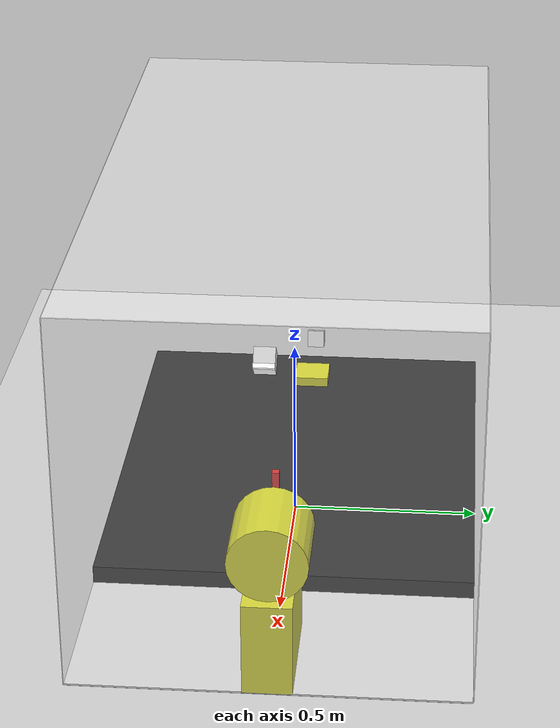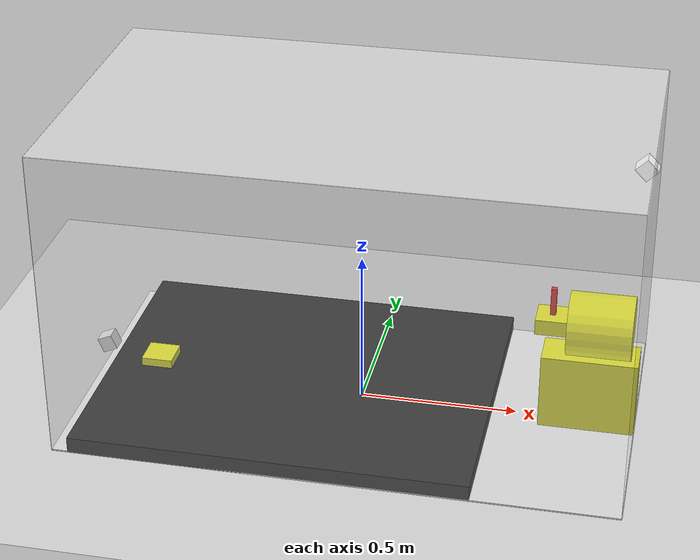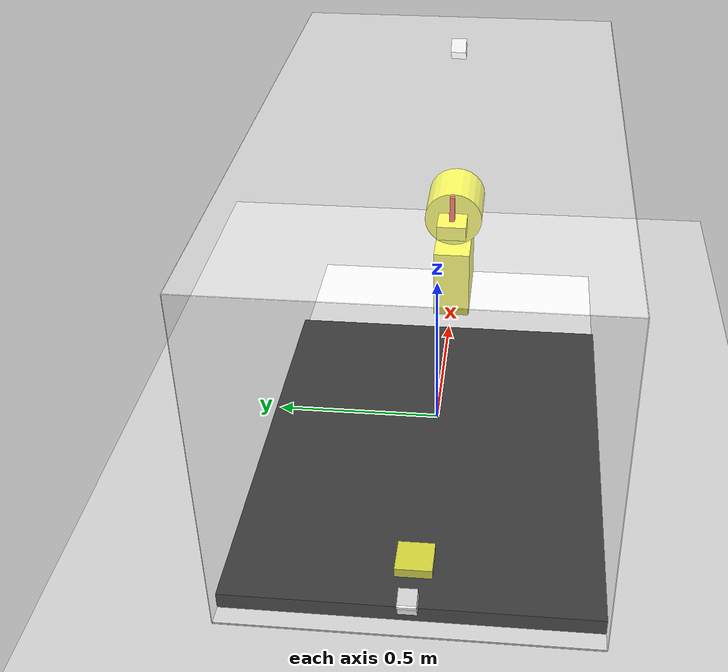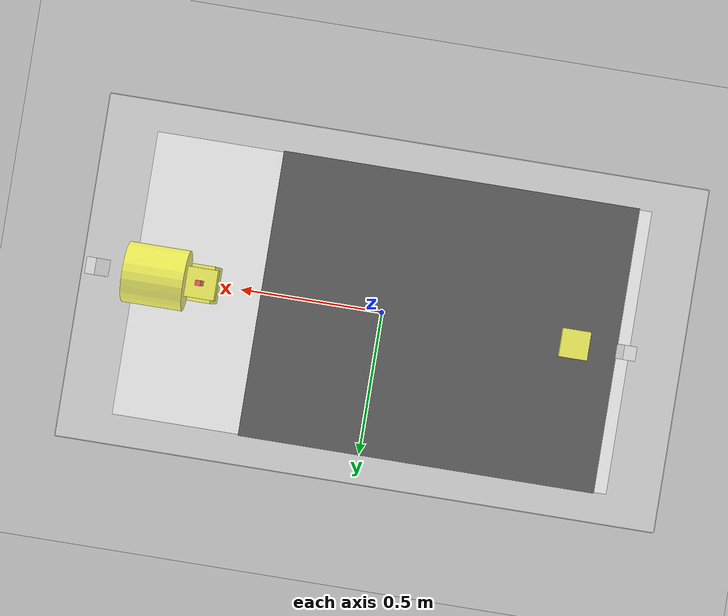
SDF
<?xml version="1.0" ?>

<sdf version="1.8">
  <world name="demo">
    <plugin
      filename="gz-sim-physics-system"
      name="gz::sim::systems::Physics">
    </plugin>
    <plugin
      filename="gz-sim-sensors-system"
      name="gz::sim::systems::Sensors">
      <render_engine>ogre2</render_engine>
    </plugin>
    <plugin
      filename="gz-sim-scene-broadcaster-system"
      name="gz::sim::systems::SceneBroadcaster">
    </plugin>
    <plugin
      filename="gz-sim-user-commands-system"
      name="gz::sim::systems::UserCommands">
    </plugin>
    <plugin
      filename="BasicSystem"
      name="ros_gz_example_gazebo::BasicSystem">
    </plugin>
    <plugin
      filename="FullSystem"
      name="ros_gz_example_gazebo::FullSystem">
    </plugin>

    <light name="sun" type="directional">
      <cast_shadows>true</cast_shadows>
      <pose>0 0 10 0 0 0</pose>
      <diffuse>0.8 0.8 0.8 1</diffuse>
      <specular>0.2 0.2 0.2 1</specular>
      <attenuation>
        <range>1000</range>
        <constant>0.9</constant>
        <linear>0.01</linear>
        <quadratic>0.001</quadratic>
      </attenuation>
      <direction>-0.5 0.1 -0.9</direction>
    </light>

    <model name="ground_plane">
      <static>true</static>
      <link name="link">
        <collision name="collision">
          <geometry>
            <plane>
              <normal>0 0 1</normal>
              <size>10 10</size>
            </plane>
          </geometry>
        </collision>
        <visual name="visual">
          <geometry>
            <plane>
              <normal>0 0 1</normal>
              <size>10 10</size>
            </plane>
          </geometry>
          <material>
            <ambient>0.8 0.8 0.8 1</ambient>
            <diffuse>0.8 0.8 0.8 1</diffuse>
            <specular>0.8 0.8 0.8 1</specular>
          </material>
        </visual>
      </link>
    </model>

    <!-- Model Cellule --><!-- Model Cellule --><!-- Model Cellule --><!-- Model Cellule --><!-- Model Cellule --><!-- Model Cellule --><!-- Model Cellule -->

    <model name='Cellule' canonical_link='Bas'>
        <static>true</static>
        <pose>0 0 0 0 0 0</pose>
        <link name='Bas'>
            <pose relative_to='__model__'>0 0 0 0 0 0</pose>
            <inertial>
                <mass>12</mass>
                <inertia>
                    <ixx>1</ixx>
                    <ixy>0</ixy>
                    <ixz>0</ixz>
                    <iyy>4</iyy>
                    <iyz>0</iyz>
                    <izz>5</izz>
                </inertia>
            </inertial>
            <visual name='visual'>
                <geometry>
                    <box>
                        <size>1.75 1.0 0.005</size>
                    </box>
                </geometry>
                <material>
                    <ambient>1.0 1.0 1.0 1.0</ambient>
                    <diffuse>1.0 1.0 1.0 1.0</diffuse>
                    <specular>1.0 1.0 1.0 1.0</specular>
                </material>
            </visual>
            <collision name='collision'>
                <geometry>
                    <box>
                        <size>1.75 1.0 0.005</size>
                    </box>
                </geometry>
            </collision>
        </link>

        <link name='Dessus'>
            <pose relative_to='fixed_bas_dessus'>0 0 0 0 0 0</pose>
            <inertial>
                <mass>12</mass>
                <inertia>
                    <ixx>1</ixx>
                    <ixy>0</ixy>
                    <ixz>0</ixz>
                    <iyy>4</iyy>
                    <iyz>0</iyz>
                    <izz>5</izz>
                </inertia>
            </inertial>
            <visual name='visual'>
                <geometry>
                    <box>
                        <size>1.75 1.0 0.005</size>
                    </box>
                </geometry>
                <material>
                    <ambient>1.0 1.0 1.0 0.4</ambient>
                    <diffuse>1.0 1.0 1.0 0.4</diffuse>
                    <specular>1.0 1.0 1.0 0.4</specular>
                </material>
            </visual>
            <collision name='collision'>
                <geometry>
                    <box>
                        <size>1.75 1.0 0.005</size>
                    </box>
                </geometry>
            </collision>
        </link>

        <link name='Fond'>
            <pose relative_to="fixed_bas_fond">0 0 0 0 0 0</pose>
            <inertial>
                <mass>12</mass>
                <inertia>
                    <ixx>1</ixx>
                    <ixy>0</ixy>
                    <ixz>0</ixz>
                    <iyy>4</iyy>
                    <iyz>0</iyz>
                    <izz>5</izz>
                </inertia>
            </inertial>
            <visual name='visual'>
                <geometry>
                    <box>
                        <size>1.75 1.0 0.005</size>
                    </box>
                </geometry>
                <material>
                    <ambient>1.0 1.0 1.0 0.4</ambient>
                    <diffuse>1.0 1.0 1.0 0.4</diffuse>
                    <specular>1.0 1.0 1.0 0.4</specular>
                </material>
            </visual>
            <collision name='collision'>
                <geometry>
                    <box>
                        <size>1.75 1.0 0.005</size>
                    </box>
                </geometry>
            </collision>
        </link>

        <link name='Devant'>
            <pose relative_to="fixed_bas_devant">0 0 0 0 0 0</pose>
            <inertial>
                <mass>12</mass>
                <inertia>
                    <ixx>1</ixx>
                    <ixy>0</ixy>
                    <ixz>0</ixz>
                    <iyy>4</iyy>
                    <iyz>0</iyz>
                    <izz>5</izz>
                </inertia>
            </inertial>
            <visual name='visual'>
                <geometry>
                    <box>
                        <size>1.75 1.0 0.005</size>
                    </box>
                </geometry>
                <material>
                    <ambient>1.0 1.0 1.0 0.4</ambient>
                    <diffuse>1.0 1.0 1.0 0.4</diffuse>
                    <specular>1.0 1.0 1.0 0.4</specular>
                </material>
            </visual>
            <collision name='collision'>
                <geometry>
                    <box>
                        <size>1.75 1.0 0.005</size>
                    </box>
                </geometry>
            </collision>
        </link>

        <link name='Droite'>
            <pose relative_to="fixed_bas_droite">0 0 0 0 0 0</pose>
            <inertial>
                <mass>6</mass>
                <inertia>
                    <ixx>0.5</ixx>
                    <ixy>0</ixy>
                    <ixz>0</ixz>
                    <iyy>0.5</iyy>
                    <iyz>0</iyz>
                    <izz>1</izz>
                </inertia>
            </inertial>
            <visual name='visual'>
                <geometry>
                    <box>
                        <size>1.0 1.0 0.005</size>
                    </box>
                </geometry>
                <material>
                    <ambient>1.0 1.0 1.0 0.4</ambient>
                    <diffuse>1.0 1.0 1.0 0.4</diffuse>
                    <specular>1.0 1.0 1.0 0.4</specular>
                </material>
            </visual>
            <collision name='collision'>
                <geometry>
                    <box>
                        <size>1.0 1.0 0.005</size>
                    </box>
                </geometry>
            </collision>
        </link>

        <link name='Gauche'>
            <pose relative_to="fixed_bas_gauche">0 0 0 0 0 0</pose>
            <inertial>
                <mass>6</mass>
                <inertia>
                    <ixx>0.5</ixx>
                    <ixy>0</ixy>
                    <ixz>0</ixz>
                    <iyy>0.5</iyy>
                    <iyz>0</iyz>
                    <izz>1</izz>
                </inertia>
            </inertial>
            <visual name='visual'>
                <geometry>
                    <box>
                        <size>1.0 1.0 0.005</size>
                    </box>
                </geometry>
                <material>
                    <ambient>1.0 1.0 1.0 0.4</ambient>
                    <diffuse>1.0 1.0 1.0 0.4</diffuse>
                    <specular>1.0 1.0 1.0 0.4</specular>
                </material>
            </visual>
            <collision name='collision'>
                <geometry>
                    <box>
                        <size>1.0 1.0 0.005</size>
                    </box>
                </geometry>
            </collision>
        </link>

        <!--    Caméra    --><!--    Caméra    --><!--    Caméra    --><!--    Caméra    --><!--    Caméra    -->
        <link name='Camera_gauche'>
            <pose relative_to='__model__'>0.85 0 0.9 0 0.775 3.14</pose>
            <inertial>
                <mass>5</mass>
                <inertia>
                    <ixx>1</ixx>
                    <ixy>0</ixy>
                    <ixz>0</ixz>
                    <iyy>4</iyy>
                    <iyz>0</iyz>
                    <izz>5</izz>
                </inertia>
            </inertial>
            <visual name='visual'>
                <geometry>
                    <box>
                        <size>0.05 0.05 0.05</size>
                    </box>
                </geometry>
                <material>
                    <ambient>1.0 1.0 1.0 1.0</ambient>
                    <diffuse>1.0 1.0 1.0 1.0</diffuse>
                    <specular>1.0 1.0 1.0 1.0</specular>
                </material>
            </visual>
            <collision name='collision'>
                <geometry>
                    <box>
                        <size>0.05 0.05 0.05</size>
                    </box>
                </geometry>
            </collision>
            <sensor name="camera_sensor" type="camera">
                <camera>
                    <horizontal_fov>1.5</horizontal_fov>
                    <image>
                    <width>640</width>
                    <height>480</height>
                    <format>R8G8B8</format>
                    </image>
                    <clip>
                    <near>0.1</near>
                    <far>100</far>
                    </clip>
                </camera>
                <always_on>true</always_on>
                <update_rate>30</update_rate>
                <visualize>true</visualize>
            </sensor>
        </link>

        <link name='Camera_droite'>
            <pose relative_to='__model__'>-0.85 0 0.1 0. -0.4 0.0</pose>
            <inertial>
                <mass>5</mass>
                <inertia>
                    <ixx>1</ixx>
                    <ixy>0</ixy>
                    <ixz>0</ixz>
                    <iyy>4</iyy>
                    <iyz>0</iyz>
                    <izz>5</izz>
                </inertia>
            </inertial>
            <visual name='visual'>
                <geometry>
                    <box>
                        <size>0.05 0.05 0.05</size>
                    </box>
                </geometry>
                <material>
                    <ambient>1.0 1.0 1.0 1.0</ambient>
                    <diffuse>1.0 1.0 1.0 1.0</diffuse>
                    <specular>1.0 1.0 1.0 1.0</specular>
                </material>
            </visual>
            <collision name='collision'>
                <geometry>
                    <box>
                        <size>0.05 0.05 0.05</size>
                    </box>
                </geometry>
            </collision>
            <sensor name="camera_sensor" type="camera">
                <camera>
                    <horizontal_fov>1.5</horizontal_fov>
                    <image>
                    <width>640</width>
                    <height>480</height>
                    <format>R8G8B8</format>
                    </image>
                    <clip>
                    <near>0.1</near>
                    <far>100</far>
                    </clip>
                </camera>
                <always_on>true</always_on>
                <update_rate>30</update_rate>
                <visualize>true</visualize>
            </sensor>
        </link>

        <!-- Joint Cellule --><!-- Joint Cellule --><!-- Joint Cellule --><!-- Joint Cellule --><!-- Joint Cellule --><!-- Joint Cellule --><!-- Joint Cellule -->

        <joint name="fixed_bas_fond" type="fixed">
            <pose relative_to="Bas">0 -0.5 0.5 -1.5707 0 0</pose>
            <parent>Bas</parent>
            <child>Fond</child>
        </joint>

        <joint name="fixed_bas_dessus" type="fixed">
            <pose relative_to="Bas">0 0 1 0 0 0</pose>
            <parent>Bas</parent>
            <child>Dessus</child>
        </joint>

        <joint name="fixed_bas_devant" type="fixed">
            <pose relative_to="Bas">0 0.5 0.5 -1.5707 0 0</pose>
            <parent>Bas</parent>
            <child>Devant</child>
        </joint>

        <joint name="fixed_bas_gauche" type="fixed">
            <pose relative_to="Bas">0.875 0 0.5 0 1.5707 0</pose>
            <parent>Bas</parent>
            <child>Gauche</child>
        </joint>

        <joint name="fixed_bas_droite" type="fixed">
            <pose relative_to="Bas">-0.875 0 0.5 0 1.5707 0</pose>
            <parent>Bas</parent>
            <child>Droite</child>
        </joint>

    </model>

    <!--  Model Boite  --><!--  Model Boite  --><!--  Model Boite  --><!--  Model Boite  --><!--  Model Boite  --><!--  Model Boite  --><!--  Model Boite  -->

    <model name='Boite' canonical_link='Boite_Gauche'>
        <static>true</static>
        <pose>0 0 0 0 0 0</pose>
        <link name='Boite_Gauche'>
            <pose relative_to='__model__'>0.725 0 0.125 0 0 0</pose>
            <inertial>
                <mass>12</mass>
                <inertia>
                    <ixx>1</ixx>
                    <ixy>0</ixy>
                    <ixz>0</ixz>
                    <iyy>4</iyy>
                    <iyz>0</iyz>
                    <izz>5</izz>
                </inertia>
            </inertial>
            <visual name='visual'>
                <geometry>
                    <box>
                        <size>0.3 0.125 0.25</size>
                    </box>
                </geometry>
                <material>
                    <ambient>1.0 1.0 0 1.0</ambient>
                    <diffuse>1.0 1.0 0 1.0</diffuse>
                    <specular>1.0 1.0 0 1.0</specular>
                </material>
            </visual>
            <collision name='collision'>
                <geometry>
                    <box>
                        <size>0.3 0.125 0.25</size>
                    </box>
                </geometry>
            </collision>
        </link>

        <link name='Boite_Droite'>
            <pose relative_to='__model__'>-0.675 0 0.0525 0 0 0</pose>
            <inertial>
                <mass>12</mass>
                <inertia>
                    <ixx>1</ixx>
                    <ixy>0</ixy>
                    <ixz>0</ixz>
                    <iyy>4</iyy>
                    <iyz>0</iyz>
                    <izz>5</izz>
                </inertia>
            </inertial>
            <visual name='visual'>
                <geometry>
                    <box>
                        <size>0.1 0.1 0.05</size>
                    </box>
                </geometry>
                <material>
                    <ambient>1.0 1.0 0 1.0</ambient>
                    <diffuse>1.0 1.0 0 1.0</diffuse>
                    <specular>1.0 1.0 0 1.0</specular>
                </material>
            </visual>
            <collision name='collision'>
                <geometry>
                    <box>
                        <size>0.1 0.1 0.05</size>
                    </box>
                </geometry>
            </collision>
        </link>
    </model>

    <!--  Model Fiole  --><!--  Model Fiole  --><!--  Model Fiole  --><!--  Model Fiole  --><!--  Model Fiole  --><!--  Model Fiole  --><!--  Model Fiole  -->

    <model name='Fiole' canonical_link='Fiole_world'>
        <static>false</static>
        <pose>0.6 0 0.42 0 0 0</pose>
        <link name='Fiole_world'>
            <pose>0.0 0 0.0 0 0 0</pose>
            <inertial>
                <mass>0.2</mass>
                <inertia>
                    <ixx>0.0001877</ixx>
                    <ixy>0</ixy>
                    <ixz>0</ixz>
                    <iyy>0.0001877</iyy>
                    <iyz>0</iyz>
                    <izz>0.000010935</izz>
                </inertia>
            </inertial>
            <visual name='visual'>
                <geometry>
                    <box>
                        <size>0.0175 0.0175 0.09</size>
                    </box>
                </geometry>
                <material>
                    <ambient>1.0 0.0 0 1.0</ambient>
                    <diffuse>1.0 0.0 0 1.0</diffuse>
                    <specular>1.0 0.0 0 1.0</specular>
                </material>
            </visual>
            <collision name='collision'>
                <geometry>
                    <box>
                        <size>0.0175 0.0175 0.09</size>
                    </box>
                </geometry>
                <surface>
                	<friction>
                		<ode>
                			<mu>0.15</mu>
                			<mu2>0.15</mu2>
                		</ode>
                	</friction>
                </surface>
            </collision>
        </link>
        <plugin
        filename="gz-sim-pose-publisher-system"
        name="gz::sim::systems::PosePublisher">
        <publish_link_pose>true</publish_link_pose>
        <publish_sensor_pose>true</publish_sensor_pose>
        <publish_collision_pose>true</publish_collision_pose>
        <publish_visual_pose>true</publish_visual_pose>
        <use_pose_vector_msg>true</use_pose_vector_msg>
        <publish_model_pose>true</publish_model_pose>
        <publish_nested_model_pose>true</publish_nested_model_pose>
        </plugin>
    </model>

    <!--  Model Fond   --><!--  Model Fond   --><!--  Model Fond   --><!--  Model Fond   --><!--  Model Fond   --><!--  Model Fond   --><!--  Model Fond   -->

    <model name='fond_haut' canonical_link='fond_world'>
        <static>true</static>
        <pose>0 0 0 0 0 0</pose>
        <link name='fond_world'>
            <pose relative_to='__model__'>-0.2 0 0.025 0 0 0</pose>
            <inertial>
                <mass>40</mass>
                <inertia>
                    <ixx>4</ixx>
                    <ixy>0</ixy>
                    <ixz>0</ixz>
                    <iyy>4</iyy>
                    <iyz>0</iyz>
                    <izz>5</izz>
                </inertia>
            </inertial>
            <visual name='visual'>
                <geometry>
                    <box>
                        <size>1.25 1.0 0.05</size>
                    </box>
                </geometry>
                <material>
                    <ambient>0.0 0.0 0.0 1.0</ambient>
                    <diffuse>0.0 0.0 0.0 1.0</diffuse>
                    <specular>0.0 0.0 0.0 1.0</specular>
                </material>
            </visual>
            <collision name='collision'>
                <geometry>
                    <box>
                        <size>1.1 1.0 0.1</size>
                    </box>
                </geometry>
            </collision>
        </link>
    </model>

    <!-- Model RTP_BOX --><!-- Model RTP_BOX --><!-- Model RTP_BOX --><!-- Model RTP_BOX --><!-- Model RTP_BOX --><!-- Model RTP_BOX --><!-- Model RTP_BOX -->

    <model name='RTP_Box' canonical_link='RTP_world'>
        <static>true</static>
        <pose>0 0 0 0 0 0</pose>
        <link name='RTP_world'>
            <pose relative_to='__model__'>0.75 0 0.35 0 1.57 0</pose>
            <inertial>
                <mass>12</mass>
                <inertia>
                    <ixx>1</ixx>
                    <ixy>0</ixy>
                    <ixz>0</ixz>
                    <iyy>4</iyy>
                    <iyz>0</iyz>
                    <izz>5</izz>
                </inertia>
            </inertial>
            <visual name='visual'>
                <geometry>
                    <cylinder>
                        <radius>0.1</radius>
                        <length>0.2</length>
                    </cylinder>
                </geometry>
                <material>
                    <ambient>1.0 1.0 0 1.0</ambient>
                    <diffuse>1.0 1.0 0 1.0</diffuse>
                    <specular>1.0 1.0 0 1.0</specular>
                </material>
            </visual>
            <collision name='collision'>
                <geometry>
                    <cylinder>
                        <radius>0.1</radius>
                        <length>0.2</length>
                    </cylinder>
                </geometry>
            </collision>
        </link>

        <link name='Tiroir'>
            <pose relative_to='__model__'>0.6 0 0.35 0 0 0</pose>
            <inertial>
                <mass>12</mass>
                <inertia>
                    <ixx>1</ixx>
                    <ixy>0</ixy>
                    <ixz>0</ixz>
                    <iyy>4</iyy>
                    <iyz>0</iyz>
                    <izz>5</izz>
                </inertia>
            </inertial>
            <visual name='visual'>
                <geometry>
                    <box>
                        <size>0.1 0.1 0.05</size>
                    </box>
                </geometry>
                <material>
                    <ambient>1.0 1.0 0 1.0</ambient>
                    <diffuse>1.0 1.0 0 1.0</diffuse>
                    <specular>1.0 1.0 0 1.0</specular>
                </material>
            </visual>
            <collision name='collision'>
                <geometry>
                    <box>
                        <size>0.1 0.1 0.05</size>
                    </box>
                </geometry>
            </collision>
        </link>
    </model>

  </world>
</sdf>
